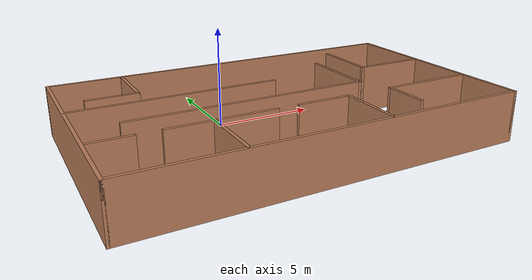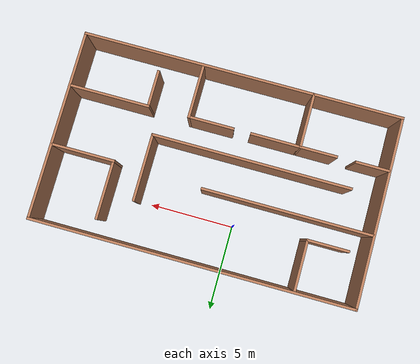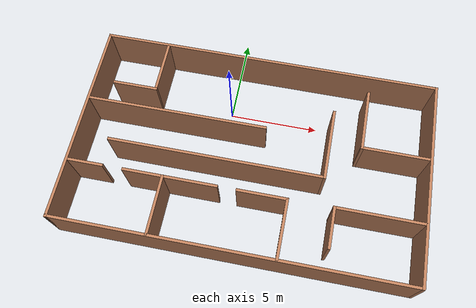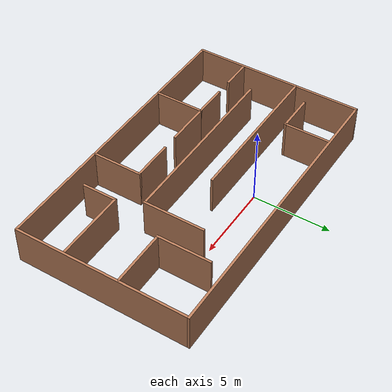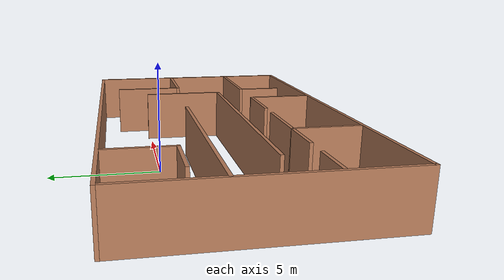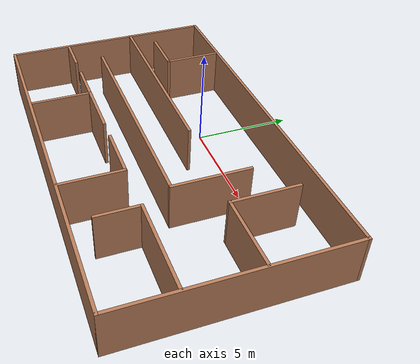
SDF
<?xml version='1.0'?>
<sdf version='1.7'>
  <model name='Textured_Walls'>
    <pose>1.71674 -2.92651 0 0 -0 0</pose>
    <link name='Wall_0'>
      <collision name='Wall_0_Collision'>
        <geometry>
          <box>
            <size>19 0.15 2.5</size>
          </box>
        </geometry>
        <pose>0 0 1.25 0 -0 0</pose>
      </collision>
      <visual name='Wall_0_Visual'>
        <pose>0 0 1.25 0 -0 0</pose>
        <geometry>
          <box>
            <size>19 0.15 2.5</size>
          </box>
        </geometry>
        <material>
          <script>
            <uri>model://Textured_Walls/materials/scripts</uri>
            <uri>model://Textured_Walls/materials/textures</uri>
            <name>outside_wallMat/Diffuse</name>
          </script>
          <ambient>0.7254 0.4902 0.3529 1</ambient>
        </material>
        <meta>
          <layer>0</layer>
        </meta>
      </visual>
      <pose>0 5.55 0 0 -0 0</pose>
    </link>
    <link name='Wall_10'>
      <collision name='Wall_10_Collision'>
        <geometry>
          <box>
            <size>2.5 0.15 2.5</size>
          </box>
        </geometry>
        <pose>0 0 1.25 0 -0 0</pose>
      </collision>
      <visual name='Wall_10_Visual'>
        <pose>0 0 1.25 0 -0 0</pose>
        <geometry>
          <box>
            <size>2.5 0.15 2.5</size>
          </box>
        </geometry>
        <material>
          <script>
            <uri>model://Textured_Walls/materials/scripts</uri>
            <uri>model://Textured_Walls/materials/textures</uri>
            <name>wallMat/Diffuse</name>
          </script>
          <ambient>0.7254 0.4902 0.3529 1</ambient>
        </material>
        <meta>
          <layer>0</layer>
        </meta>
      </visual>
      <pose>-7.08543 2.57447 0 0 -0 3.14159</pose>
    </link>
    <link name='Wall_12'>
      <collision name='Wall_12_Collision'>
        <geometry>
          <box>
            <size>10 0.15 2.5</size>
          </box>
        </geometry>
        <pose>0 0 1.25 0 -0 0</pose>
      </collision>
      <visual name='Wall_12_Visual'>
        <pose>0 0 1.25 0 -0 0</pose>
        <geometry>
          <box>
            <size>10 0.15 2.5</size>
          </box>
        </geometry>
        <material>
          <script>
            <uri>model://Textured_Walls/materials/scripts</uri>
            <uri>model://Textured_Walls/materials/textures</uri>
            <name>outside_wallMat/Diffuse</name>
          </script>
          <ambient>0.7254 0.4902 0.3529 1</ambient>
        </material>
        <meta>
          <layer>0</layer>
        </meta>
      </visual>
      <pose>-4.42153 1.36608 0 0 -0 0</pose>
    </link>
    <link name='Wall_14'>
      <collision name='Wall_14_Collision'>
        <geometry>
          <box>
            <size>11.75 0.15 2.5</size>
          </box>
        </geometry>
        <pose>0 0 1.25 0 -0 0</pose>
      </collision>
      <visual name='Wall_14_Visual'>
        <pose>0 0 1.25 0 -0 0</pose>
        <geometry>
          <box>
            <size>11.75 0.15 2.5</size>
          </box>
        </geometry>
        <material>
          <script>
            <uri>model://Textured_Walls/materials/scripts</uri>
            <uri>model://Textured_Walls/materials/textures</uri>
            <name>outside_wallMat/Diffuse</name>
          </script>
          <ambient>0.7254 0.4902 0.3529 1</ambient>
        </material>
        <meta>
          <layer>0</layer>
        </meta>
      </visual>
      <pose>-1.76084 -0.852506 0 0 -0 0</pose>
    </link>
    <link name='Wall_17'>
      <collision name='Wall_17_Collision'>
        <geometry>
          <box>
            <size>2 0.15 2.5</size>
          </box>
        </geometry>
        <pose>0 0 1.25 0 -0 0</pose>
      </collision>
      <visual name='Wall_17_Visual'>
        <pose>0 0 1.25 0 -0 0</pose>
        <geometry>
          <box>
            <size>2 0.15 2.5</size>
          </box>
        </geometry>
        <material>
          <script>
            <uri>model://Textured_Walls/materials/scripts</uri>
            <uri>model://Textured_Walls/materials/textures</uri>
            <name>wallMat/Diffuse</name>
          </script>
          <ambient>0.7254 0.4902 0.3529 1</ambient>
        </material>
        <meta>
          <layer>0</layer>
        </meta>
      </visual>
      <pose>-8.42153 -2.39469 0 0 -0 0</pose>
    </link>
    <link name='Wall_19'>
      <collision name='Wall_19_Collision'>
        <geometry>
          <box>
            <size>2.25 0.15 2.5</size>
          </box>
        </geometry>
        <pose>0 0 1.25 0 -0 0</pose>
      </collision>
      <visual name='Wall_19_Visual'>
        <pose>0 0 1.25 0 -0 0</pose>
        <geometry>
          <box>
            <size>2.25 0.15 2.5</size>
          </box>
        </geometry>
        <material>
          <script>
            <uri>model://Textured_Walls/materials/scripts</uri>
            <uri>model://Textured_Walls/materials/textures</uri>
            <name>wallMat/Diffuse</name>
          </script>
          <ambient>0.7254 0.4902 0.3529 1</ambient>
        </material>
        <meta>
          <layer>0</layer>
        </meta>
      </visual>
      <pose>-5.26627 -2.39469 0 0 -0 0</pose>
    </link>
    <link name='Wall_20'>
      <collision name='Wall_20_Collision'>
        <geometry>
          <box>
            <size>3.25 0.15 2.5</size>
          </box>
        </geometry>
        <pose>0 0 1.25 0 -0 0</pose>
      </collision>
      <visual name='Wall_20_Visual'>
        <pose>0 0 1.25 0 -0 0</pose>
        <geometry>
          <box>
            <size>3.25 0.15 2.5</size>
          </box>
        </geometry>
        <material>
          <script>
            <uri>model://Textured_Walls/materials/scripts</uri>
            <uri>model://Textured_Walls/materials/textures</uri>
            <name>wallMat/Diffuse</name>
          </script>
          <ambient>0.7254 0.4902 0.3529 1</ambient>
        </material>
        <meta>
          <layer>0</layer>
        </meta>
      </visual>
      <pose>-4.21627 -3.94469 0 0 -0 -1.5708</pose>
    </link>
    <link name='Wall_22'>
      <collision name='Wall_22_Collision'>
        <geometry>
          <box>
            <size>3 0.15 2.5</size>
          </box>
        </geometry>
        <pose>0 0 1.25 0 -0 0</pose>
      </collision>
      <visual name='Wall_22_Visual'>
        <pose>0 0 1.25 0 -0 0</pose>
        <geometry>
          <box>
            <size>3 0.15 2.5</size>
          </box>
        </geometry>
        <material>
          <script>
            <uri>model://Textured_Walls/materials/scripts</uri>
            <uri>model://Textured_Walls/materials/textures</uri>
            <name>wallMat/Diffuse</name>
          </script>
          <ambient>0.7254 0.4902 0.3529 1</ambient>
        </material>
        <meta>
          <layer>0</layer>
        </meta>
      </visual>
      <pose>-2.79127 -2.39469 0 0 -0 0</pose>
    </link>
    <link name='Wall_24'>
      <collision name='Wall_24_Collision'>
        <geometry>
          <box>
            <size>2.75 0.15 2.5</size>
          </box>
        </geometry>
        <pose>0 0 1.25 0 -0 0</pose>
      </collision>
      <visual name='Wall_24_Visual'>
        <pose>0 0 1.25 0 -0 0</pose>
        <geometry>
          <box>
            <size>2.75 0.15 2.5</size>
          </box>
        </geometry>
        <material>
          <script>
            <uri>model://Textured_Walls/materials/scripts</uri>
            <uri>model://Textured_Walls/materials/textures</uri>
            <name>wallMat/Diffuse</name>
          </script>
          <ambient>0.7254 0.4902 0.3529 1</ambient>
        </material>
        <meta>
          <layer>0</layer>
        </meta>
      </visual>
      <pose>1.04426 -2.39469 0 0 -0 0</pose>
    </link>
    <link name='Wall_25'>
      <collision name='Wall_25_Collision'>
        <geometry>
          <box>
            <size>3.25 0.15 2.5</size>
          </box>
        </geometry>
        <pose>0 0 1.25 0 -0 0</pose>
      </collision>
      <visual name='Wall_25_Visual'>
        <pose>0 0 1.25 0 -0 0</pose>
        <geometry>
          <box>
            <size>3.25 0.15 2.5</size>
          </box>
        </geometry>
        <material>
          <script>
            <uri>model://Textured_Walls/materials/scripts</uri>
            <uri>model://Textured_Walls/materials/textures</uri>
            <name>wallMat/Diffuse</name>
          </script>
          <ambient>0.7254 0.4902 0.3529 1</ambient>
        </material>
        <meta>
          <layer>0</layer>
        </meta>
      </visual>
      <pose>2.34426 -3.94469 0 0 -0 -1.5708</pose>
    </link>
    <link name='Wall_27'>
      <collision name='Wall_27_Collision'>
        <geometry>
          <box>
            <size>4.75 0.15 2.5</size>
          </box>
        </geometry>
        <pose>0 0 1.25 0 -0 0</pose>
      </collision>
      <visual name='Wall_27_Visual'>
        <pose>0 0 1.25 0 -0 0</pose>
        <geometry>
          <box>
            <size>4.75 0.15 2.5</size>
          </box>
        </geometry>
        <material>
          <script>
            <uri>model://Textured_Walls/materials/scripts</uri>
            <uri>model://Textured_Walls/materials/textures</uri>
            <name>wallMat/Diffuse</name>
          </script>
          <ambient>0.7254 0.4902 0.3529 1</ambient>
        </material>
        <meta>
          <layer>0</layer>
        </meta>
      </visual>
      <pose>7.04912 -2.36764 0 0 -0 3.14159</pose>
    </link>
    <link name='Wall_28'>
      <collision name='Wall_28_Collision'>
        <geometry>
          <box>
            <size>2.25 0.15 2.5</size>
          </box>
        </geometry>
        <pose>0 0 1.25 0 -0 0</pose>
      </collision>
      <visual name='Wall_28_Visual'>
        <pose>0 0 1.25 0 -0 0</pose>
        <geometry>
          <box>
            <size>2.25 0.15 2.5</size>
          </box>
        </geometry>
        <material>
          <script>
            <uri>model://Textured_Walls/materials/scripts</uri>
            <uri>model://Textured_Walls/materials/textures</uri>
            <name>wallMat/Diffuse</name>
          </script>
          <ambient>0.7254 0.4902 0.3529 1</ambient>
        </material>
        <meta>
          <layer>0</layer>
        </meta>
      </visual>
      <pose>4.74912 -3.41764 0 0 -0 -1.5708</pose>
    </link>
    <link name='Wall_30'>
      <collision name='Wall_30_Collision'>
        <geometry>
          <box>
            <size>3.75 0.15 2.5</size>
          </box>
        </geometry>
        <pose>0 0 1.25 0 -0 0</pose>
      </collision>
      <visual name='Wall_30_Visual'>
        <pose>0 0 1.25 0 -0 0</pose>
        <geometry>
          <box>
            <size>3.75 0.15 2.5</size>
          </box>
        </geometry>
        <material>
          <script>
            <uri>model://Textured_Walls/materials/scripts</uri>
            <uri>model://Textured_Walls/materials/textures</uri>
            <name>wallMat/Diffuse</name>
          </script>
          <ambient>0.7254 0.4902 0.3529 1</ambient>
        </material>
        <meta>
          <layer>0</layer>
        </meta>
      </visual>
      <pose>7.55475 1.1822 0 0 -0 3.14159</pose>
    </link>
    <link name='Wall_31'>
      <collision name='Wall_31_Collision'>
        <geometry>
          <box>
            <size>3.5 0.15 2.5</size>
          </box>
        </geometry>
        <pose>0 0 1.25 0 -0 0</pose>
      </collision>
      <visual name='Wall_31_Visual'>
        <pose>0 0 1.25 0 -0 0</pose>
        <geometry>
          <box>
            <size>3.5 0.15 2.5</size>
          </box>
        </geometry>
        <material>
          <script>
            <uri>model://Textured_Walls/materials/scripts</uri>
            <uri>model://Textured_Walls/materials/textures</uri>
            <name>wallMat/Diffuse</name>
          </script>
          <ambient>0.7254 0.4902 0.3529 1</ambient>
        </material>
        <meta>
          <layer>0</layer>
        </meta>
      </visual>
      <pose>5.75475 2.8572 0 0 -0 1.5708</pose>
    </link>
    <link name='Wall_33'>
      <collision name='Wall_33_Collision'>
        <geometry>
          <box>
            <size>4 0.15 2.5</size>
          </box>
        </geometry>
        <pose>0 0 1.25 0 -0 0</pose>
      </collision>
      <visual name='Wall_33_Visual'>
        <pose>0 0 1.25 0 -0 0</pose>
        <geometry>
          <box>
            <size>4 0.15 2.5</size>
          </box>
        </geometry>
        <material>
          <script>
            <uri>model://Textured_Walls/materials/scripts</uri>
            <uri>model://Textured_Walls/materials/textures</uri>
            <name>wallMat/Diffuse</name>
          </script>
          <ambient>0.7254 0.4902 0.3529 1</ambient>
        </material>
        <meta>
          <layer>0</layer>
        </meta>
      </visual>
      <pose>4.03916 1.07249 0 0 -0 1.5708</pose>
    </link>
    <link name='Wall_4'>
      <collision name='Wall_4_Collision'>
        <geometry>
          <box>
            <size>11.25 0.15 2.5</size>
          </box>
        </geometry>
        <pose>0 0 1.25 0 -0 0</pose>
      </collision>
      <visual name='Wall_4_Visual'>
        <pose>0 0 1.25 0 -0 0</pose>
        <geometry>
          <box>
            <size>11.25 0.15 2.5</size>
          </box>
        </geometry>
        <material>
          <script>
            <uri>model://Textured_Walls/materials/scripts</uri>
            <uri>model://Textured_Walls/materials/textures</uri>
            <name>outside_wallMat/Diffuse</name>
          </script>
          <ambient>0.7254 0.4902 0.3529 1</ambient>
        </material>
        <meta>
          <layer>0</layer>
        </meta>
      </visual>
      <pose>-9.425 -0 0 0 -0 -1.5708</pose>
    </link>
    <link name='Wall_5'>
      <collision name='Wall_5_Collision'>
        <geometry>
          <box>
            <size>19 0.15 2.5</size>
          </box>
        </geometry>
        <pose>0 0 1.25 0 -0 0</pose>
      </collision>
      <visual name='Wall_5_Visual'>
        <pose>0 0 1.25 0 -0 0</pose>
        <geometry>
          <box>
            <size>19 0.15 2.5</size>
          </box>
        </geometry>
        <material>
          <script>
            <uri>model://Textured_Walls/materials/scripts</uri>
            <uri>model://Textured_Walls/materials/textures</uri>
            <name>outside_wallMat/Diffuse</name>
          </script>
          <ambient>0.7254 0.4902 0.3529 1</ambient>
        </material>
        <meta>
          <layer>0</layer>
        </meta>
      </visual>
      <pose>0 -5.55 0 0 -0 0</pose>
    </link>
    <link name='Wall_6'>
      <collision name='Wall_6_Collision'>
        <geometry>
          <box>
            <size>11.25 0.15 2.5</size>
          </box>
        </geometry>
        <pose>0 0 1.25 0 -0 0</pose>
      </collision>
      <visual name='Wall_6_Visual'>
        <pose>0 0 1.25 0 -0 0</pose>
        <geometry>
          <box>
            <size>11.25 0.15 2.5</size>
          </box>
        </geometry>
        <material>
          <script>
            <uri>model://Textured_Walls/materials/scripts</uri>
            <uri>model://Textured_Walls/materials/textures</uri>
            <name>outside_wallMat/Diffuse</name>
          </script>
          <ambient>0.7254 0.4902 0.3529 1</ambient>
        </material>
        <meta>
          <layer>0</layer>
        </meta>
      </visual>
      <pose>9.425 -0 0 0 -0 1.5708</pose>
    </link>
    <link name='Wall_9'>
      <collision name='Wall_9_Collision'>
        <geometry>
          <box>
            <size>3 0.15 2.5</size>
          </box>
        </geometry>
        <pose>0 0 1.25 0 -0 0</pose>
      </collision>
      <visual name='Wall_9_Visual'>
        <pose>0 0 1.25 0 -0 0</pose>
        <geometry>
          <box>
            <size>3 0.15 2.5</size>
          </box>
        </geometry>
        <material>
          <script>
            <uri>model://Textured_Walls/materials/scripts</uri>
            <uri>model://Textured_Walls/materials/textures</uri>
            <name>wallMat/Diffuse</name>
          </script>
          <ambient>0.7254 0.4902 0.3529 1</ambient>
        </material>
        <meta>
          <layer>0</layer>
        </meta>
      </visual>
      <pose>-5.91043 3.99947 0 0 -0 -1.5708</pose>
    </link>
    <static>1</static>
  </model>
</sdf>
